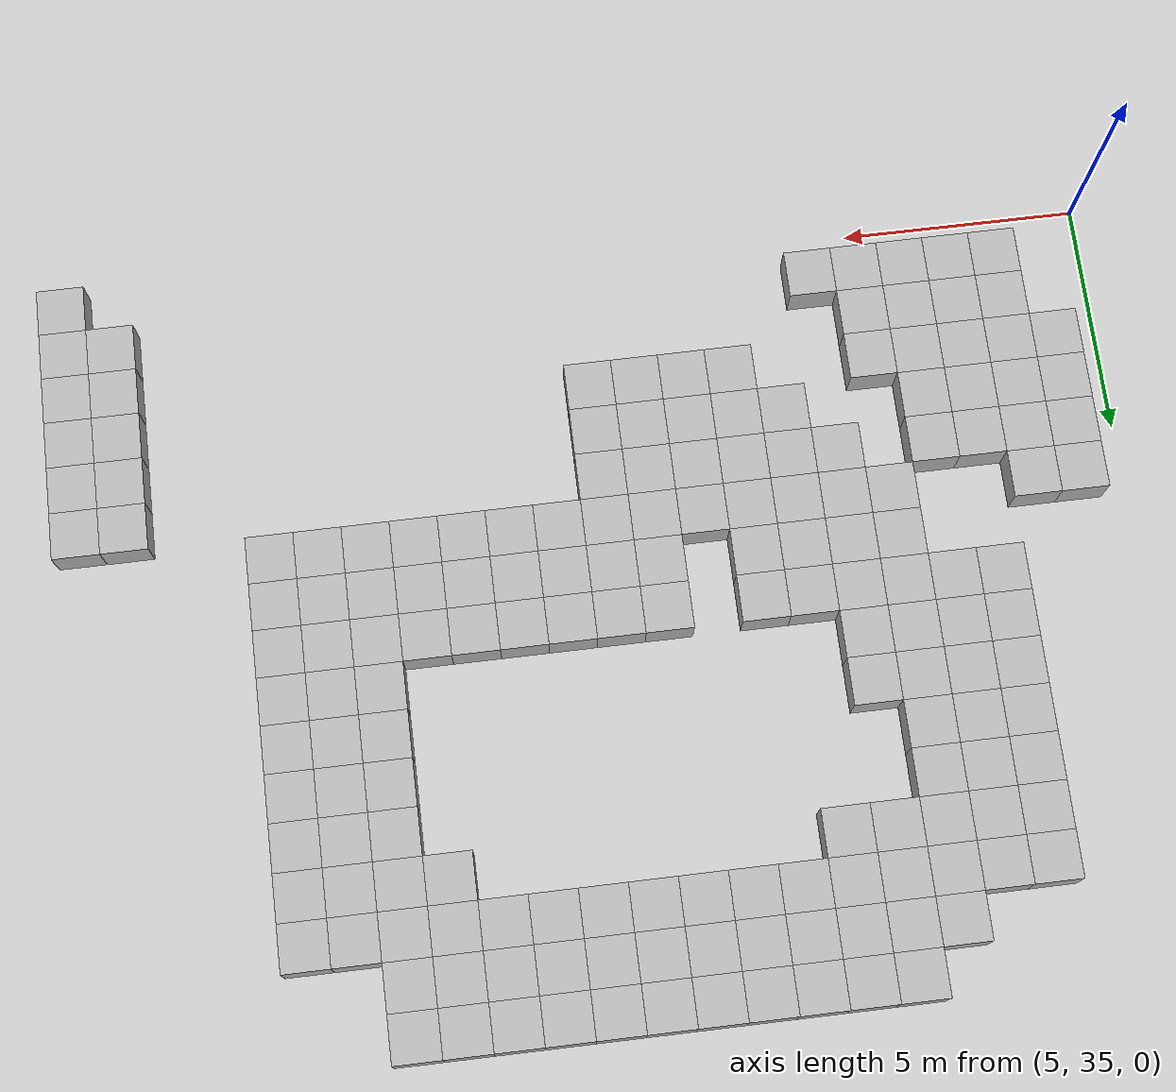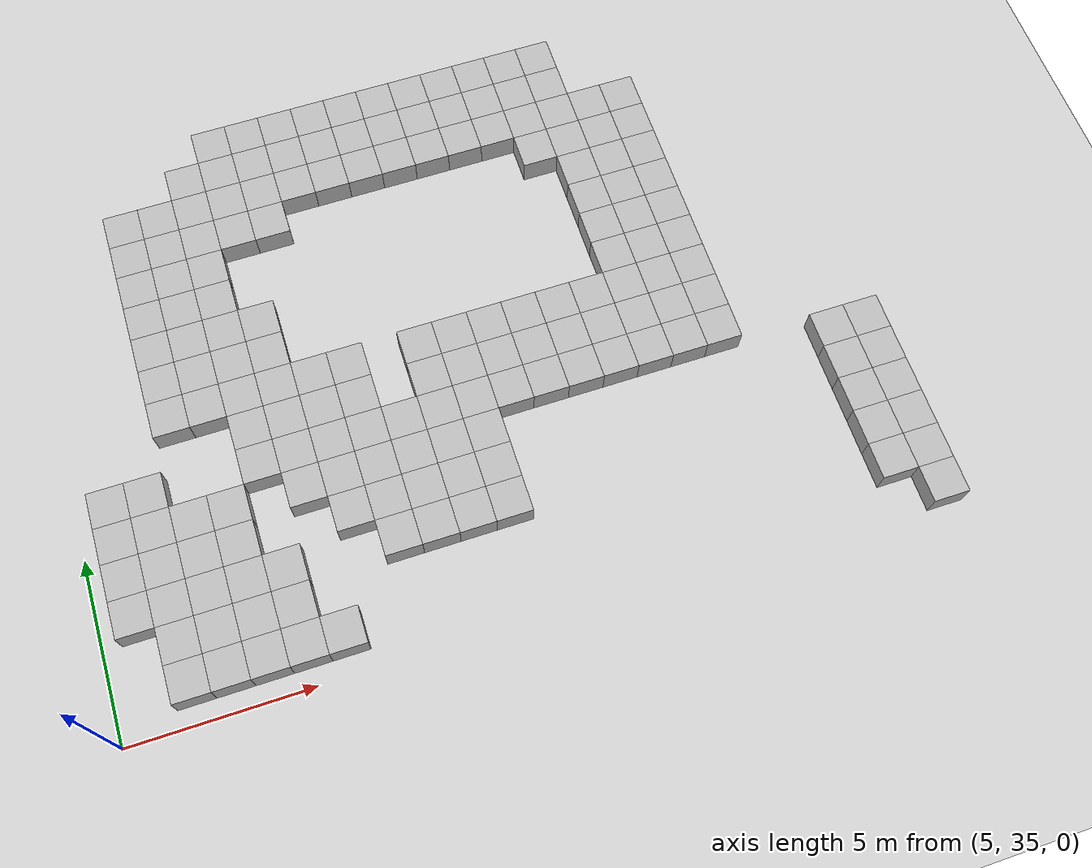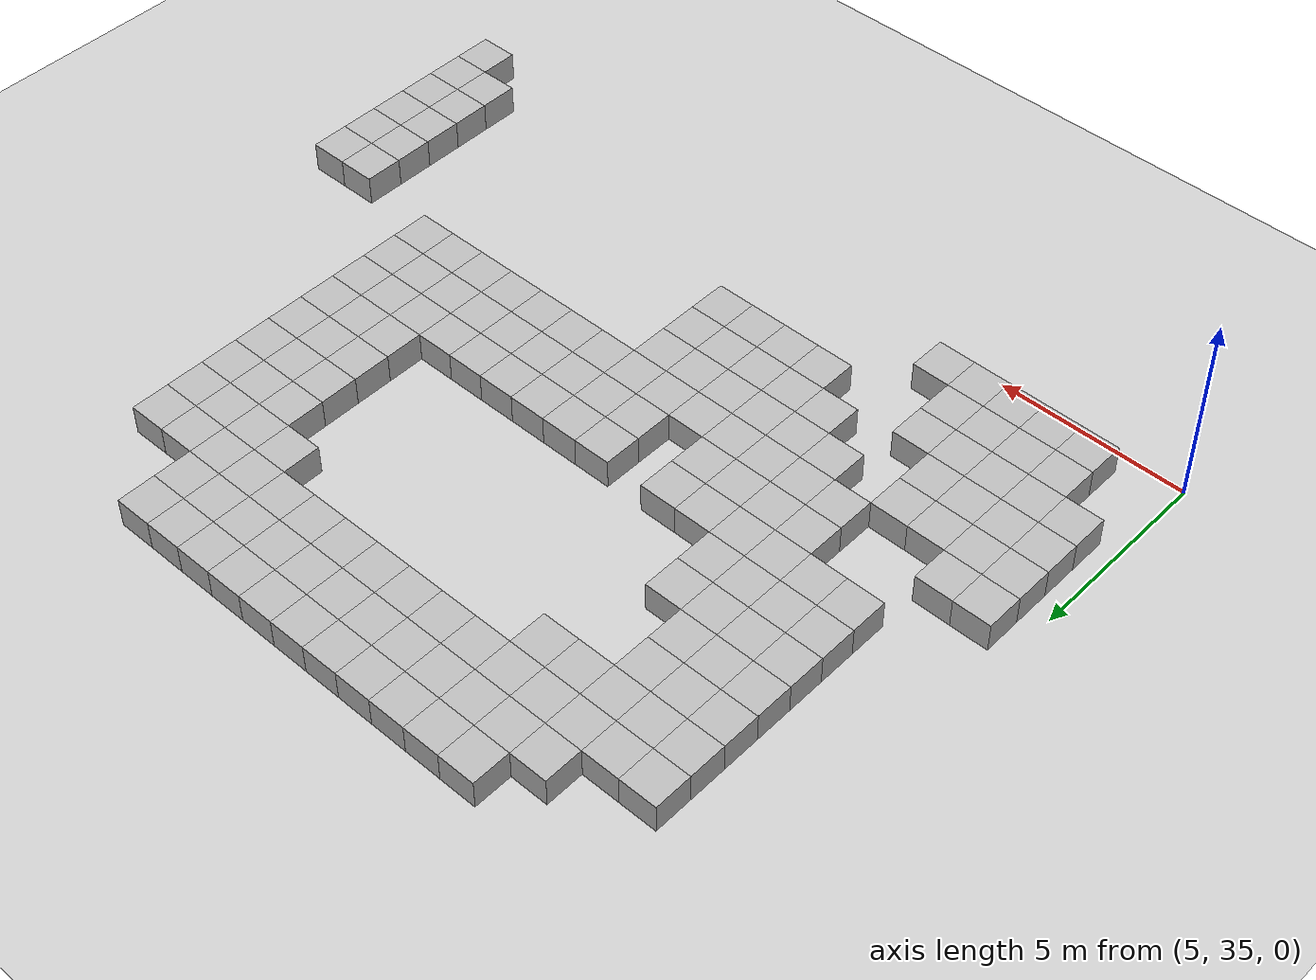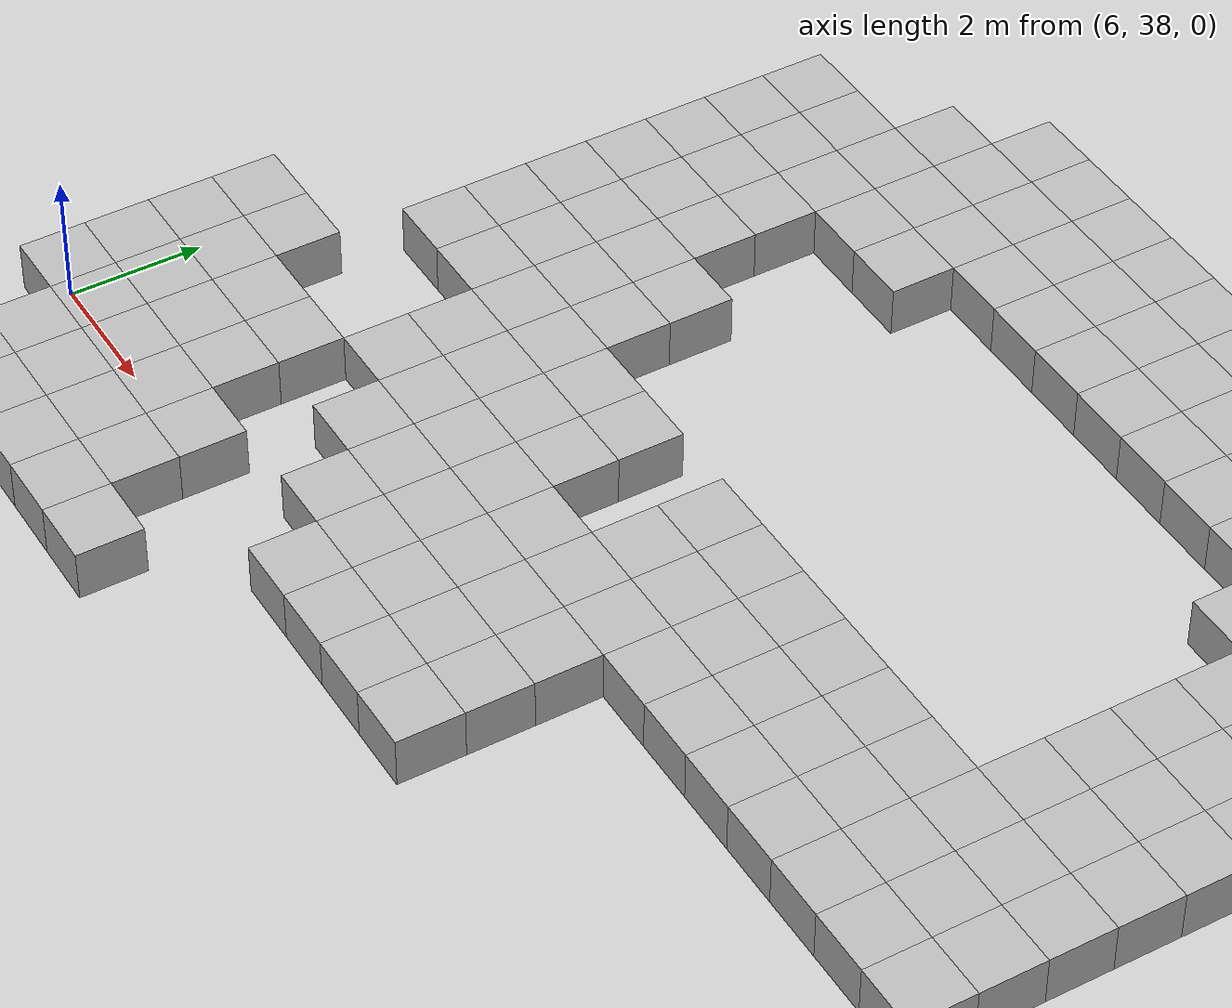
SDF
<sdf version="1.6">
 <world name="default">
  <model name="ground_plane">
   <static>1</static>
   <link name="link">
    <collision name="collision">
     <geometry><plane><normal>0 0 1</normal><size>100 100</size></plane></geometry>
     <surface>
      <contact><collide_bitmask>65535</collide_bitmask></contact>
      <friction><ode><mu>100</mu><mu2>50</mu2></ode></friction>
     </surface>
    </collision>
    <visual name="visual">
     <cast_shadows>0</cast_shadows>
     <geometry><plane><normal>0 0 1</normal><size>100 100</size></plane></geometry>
     <material>
      <script><uri>file://media/materials/scripts/gazebo.material</uri><name>Gazebo/Grey</name></script>
     </material>
    </visual>
   </link>
  </model>
  <model name="box_638">
   <static>1</static>
   <pose>6 38 0 0 -0 0</pose>
   <link name="link"><visual name="visual"><geometry><box><size>1 1 1.5</size></box></geometry></visual></link>
  </model>
  <model name="box_639">
   <static>1</static>
   <pose>6 39 0 0 -0 0</pose>
   <link name="link"><visual name="visual"><geometry><box><size>1 1 1.5</size></box></geometry></visual></link>
  </model>
  <model name="box_640">
   <static>1</static>
   <pose>6 40 0 0 -0 0</pose>
   <link name="link"><visual name="visual"><geometry><box><size>1 1 1.5</size></box></geometry></visual></link>
  </model>
  <model name="box_641">
   <static>1</static>
   <pose>6 41 0 0 -0 0</pose>
   <link name="link"><visual name="visual"><geometry><box><size>1 1 1.5</size></box></geometry></visual></link>
  </model>
  <model name="box_736">
   <static>1</static>
   <pose>7 36 0 0 -0 0</pose>
   <link name="link"><visual name="visual"><geometry><box><size>1 1 1.5</size></box></geometry></visual></link>
  </model>
  <model name="box_737">
   <static>1</static>
   <pose>7 37 0 0 -0 0</pose>
   <link name="link"><visual name="visual"><geometry><box><size>1 1 1.5</size></box></geometry></visual></link>
  </model>
  <model name="box_738">
   <static>1</static>
   <pose>7 38 0 0 -0 0</pose>
   <link name="link"><visual name="visual"><geometry><box><size>1 1 1.5</size></box></geometry></visual></link>
  </model>
  <model name="box_739">
   <static>1</static>
   <pose>7 39 0 0 -0 0</pose>
   <link name="link"><visual name="visual"><geometry><box><size>1 1 1.5</size></box></geometry></visual></link>
  </model>
  <model name="box_740">
   <static>1</static>
   <pose>7 40 0 0 -0 0</pose>
   <link name="link"><visual name="visual"><geometry><box><size>1 1 1.5</size></box></geometry></visual></link>
  </model>
  <model name="box_741">
   <static>1</static>
   <pose>7 41 0 0 -0 0</pose>
   <link name="link"><visual name="visual"><geometry><box><size>1 1 1.5</size></box></geometry></visual></link>
  </model>
  <model name="box_836">
   <static>1</static>
   <pose>8 36 0 0 -0 0</pose>
   <link name="link"><visual name="visual"><geometry><box><size>1 1 1.5</size></box></geometry></visual></link>
  </model>
  <model name="box_837">
   <static>1</static>
   <pose>8 37 0 0 -0 0</pose>
   <link name="link"><visual name="visual"><geometry><box><size>1 1 1.5</size></box></geometry></visual></link>
  </model>
  <model name="box_838">
   <static>1</static>
   <pose>8 38 0 0 -0 0</pose>
   <link name="link"><visual name="visual"><geometry><box><size>1 1 1.5</size></box></geometry></visual></link>
  </model>
  <model name="box_839">
   <static>1</static>
   <pose>8 39 0 0 -0 0</pose>
   <link name="link"><visual name="visual"><geometry><box><size>1 1 1.5</size></box></geometry></visual></link>
  </model>
  <model name="box_840">
   <static>1</static>
   <pose>8 40 0 0 -0 0</pose>
   <link name="link"><visual name="visual"><geometry><box><size>1 1 1.5</size></box></geometry></visual></link>
  </model>
  <model name="box_843">
   <static>1</static>
   <pose>8 43 0 0 -0 0</pose>
   <link name="link"><visual name="visual"><geometry><box><size>1 1 1.5</size></box></geometry></visual></link>
  </model>
  <model name="box_844">
   <static>1</static>
   <pose>8 44 0 0 -0 0</pose>
   <link name="link"><visual name="visual"><geometry><box><size>1 1 1.5</size></box></geometry></visual></link>
  </model>
  <model name="box_845">
   <static>1</static>
   <pose>8 45 0 0 -0 0</pose>
   <link name="link"><visual name="visual"><geometry><box><size>1 1 1.5</size></box></geometry></visual></link>
  </model>
  <model name="box_846">
   <static>1</static>
   <pose>8 46 0 0 -0 0</pose>
   <link name="link"><visual name="visual"><geometry><box><size>1 1 1.5</size></box></geometry></visual></link>
  </model>
  <model name="box_847">
   <static>1</static>
   <pose>8 47 0 0 -0 0</pose>
   <link name="link"><visual name="visual"><geometry><box><size>1 1 1.5</size></box></geometry></visual></link>
  </model>
  <model name="box_848">
   <static>1</static>
   <pose>8 48 0 0 -0 0</pose>
   <link name="link"><visual name="visual"><geometry><box><size>1 1 1.5</size></box></geometry></visual></link>
  </model>
  <model name="box_849">
   <static>1</static>
   <pose>8 49 0 0 -0 0</pose>
   <link name="link"><visual name="visual"><geometry><box><size>1 1 1.5</size></box></geometry></visual></link>
  </model>
  <model name="box_936">
   <static>1</static>
   <pose>9 36 0 0 -0 0</pose>
   <link name="link"><visual name="visual"><geometry><box><size>1 1 1.5</size></box></geometry></visual></link>
  </model>
  <model name="box_937">
   <static>1</static>
   <pose>9 37 0 0 -0 0</pose>
   <link name="link"><visual name="visual"><geometry><box><size>1 1 1.5</size></box></geometry></visual></link>
  </model>
  <model name="box_938">
   <static>1</static>
   <pose>9 38 0 0 -0 0</pose>
   <link name="link"><visual name="visual"><geometry><box><size>1 1 1.5</size></box></geometry></visual></link>
  </model>
  <model name="box_939">
   <static>1</static>
   <pose>9 39 0 0 -0 0</pose>
   <link name="link"><visual name="visual"><geometry><box><size>1 1 1.5</size></box></geometry></visual></link>
  </model>
  <model name="box_940">
   <static>1</static>
   <pose>9 40 0 0 -0 0</pose>
   <link name="link"><visual name="visual"><geometry><box><size>1 1 1.5</size></box></geometry></visual></link>
  </model>
  <model name="box_943">
   <static>1</static>
   <pose>9 43 0 0 -0 0</pose>
   <link name="link"><visual name="visual"><geometry><box><size>1 1 1.5</size></box></geometry></visual></link>
  </model>
  <model name="box_944">
   <static>1</static>
   <pose>9 44 0 0 -0 0</pose>
   <link name="link"><visual name="visual"><geometry><box><size>1 1 1.5</size></box></geometry></visual></link>
  </model>
  <model name="box_945">
   <static>1</static>
   <pose>9 45 0 0 -0 0</pose>
   <link name="link"><visual name="visual"><geometry><box><size>1 1 1.5</size></box></geometry></visual></link>
  </model>
  <model name="box_946">
   <static>1</static>
   <pose>9 46 0 0 -0 0</pose>
   <link name="link"><visual name="visual"><geometry><box><size>1 1 1.5</size></box></geometry></visual></link>
  </model>
  <model name="box_947">
   <static>1</static>
   <pose>9 47 0 0 -0 0</pose>
   <link name="link"><visual name="visual"><geometry><box><size>1 1 1.5</size></box></geometry></visual></link>
  </model>
  <model name="box_948">
   <static>1</static>
   <pose>9 48 0 0 -0 0</pose>
   <link name="link"><visual name="visual"><geometry><box><size>1 1 1.5</size></box></geometry></visual></link>
  </model>
  <model name="box_949">
   <static>1</static>
   <pose>9 49 0 0 -0 0</pose>
   <link name="link"><visual name="visual"><geometry><box><size>1 1 1.5</size></box></geometry></visual></link>
  </model>
  <model name="box_1036">
   <static>1</static>
   <pose>10 36 0 0 -0 0</pose>
   <link name="link"><visual name="visual"><geometry><box><size>1 1 1.5</size></box></geometry></visual></link>
  </model>
  <model name="box_1037">
   <static>1</static>
   <pose>10 37 0 0 -0 0</pose>
   <link name="link"><visual name="visual"><geometry><box><size>1 1 1.5</size></box></geometry></visual></link>
  </model>
  <model name="box_1038">
   <static>1</static>
   <pose>10 38 0 0 -0 0</pose>
   <link name="link"><visual name="visual"><geometry><box><size>1 1 1.5</size></box></geometry></visual></link>
  </model>
  <model name="box_1041">
   <static>1</static>
   <pose>10 41 0 0 -0 0</pose>
   <link name="link"><visual name="visual"><geometry><box><size>1 1 1.5</size></box></geometry></visual></link>
  </model>
  <model name="box_1042">
   <static>1</static>
   <pose>10 42 0 0 -0 0</pose>
   <link name="link"><visual name="visual"><geometry><box><size>1 1 1.5</size></box></geometry></visual></link>
  </model>
  <model name="box_1043">
   <static>1</static>
   <pose>10 43 0 0 -0 0</pose>
   <link name="link"><visual name="visual"><geometry><box><size>1 1 1.5</size></box></geometry></visual></link>
  </model>
  <model name="box_1044">
   <static>1</static>
   <pose>10 44 0 0 -0 0</pose>
   <link name="link"><visual name="visual"><geometry><box><size>1 1 1.5</size></box></geometry></visual></link>
  </model>
  <model name="box_1045">
   <static>1</static>
   <pose>10 45 0 0 -0 0</pose>
   <link name="link"><visual name="visual"><geometry><box><size>1 1 1.5</size></box></geometry></visual></link>
  </model>
  <model name="box_1046">
   <static>1</static>
   <pose>10 46 0 0 -0 0</pose>
   <link name="link"><visual name="visual"><geometry><box><size>1 1 1.5</size></box></geometry></visual></link>
  </model>
  <model name="box_1047">
   <static>1</static>
   <pose>10 47 0 0 -0 0</pose>
   <link name="link"><visual name="visual"><geometry><box><size>1 1 1.5</size></box></geometry></visual></link>
  </model>
  <model name="box_1048">
   <static>1</static>
   <pose>10 48 0 0 -0 0</pose>
   <link name="link"><visual name="visual"><geometry><box><size>1 1 1.5</size></box></geometry></visual></link>
  </model>
  <model name="box_1049">
   <static>1</static>
   <pose>10 49 0 0 -0 0</pose>
   <link name="link"><visual name="visual"><geometry><box><size>1 1 1.5</size></box></geometry></visual></link>
  </model>
  <model name="box_1050">
   <static>1</static>
   <pose>10 50 0 0 -0 0</pose>
   <link name="link"><visual name="visual"><geometry><box><size>1 1 1.5</size></box></geometry></visual></link>
  </model>
  <model name="box_1136">
   <static>1</static>
   <pose>11 36 0 0 -0 0</pose>
   <link name="link"><visual name="visual"><geometry><box><size>1 1 1.5</size></box></geometry></visual></link>
  </model>
  <model name="box_1140">
   <static>1</static>
   <pose>11 40 0 0 -0 0</pose>
   <link name="link"><visual name="visual"><geometry><box><size>1 1 1.5</size></box></geometry></visual></link>
  </model>
  <model name="box_1141">
   <static>1</static>
   <pose>11 41 0 0 -0 0</pose>
   <link name="link"><visual name="visual"><geometry><box><size>1 1 1.5</size></box></geometry></visual></link>
  </model>
  <model name="box_1142">
   <static>1</static>
   <pose>11 42 0 0 -0 0</pose>
   <link name="link"><visual name="visual"><geometry><box><size>1 1 1.5</size></box></geometry></visual></link>
  </model>
  <model name="box_1143">
   <static>1</static>
   <pose>11 43 0 0 -0 0</pose>
   <link name="link"><visual name="visual"><geometry><box><size>1 1 1.5</size></box></geometry></visual></link>
  </model>
  <model name="box_1144">
   <static>1</static>
   <pose>11 44 0 0 -0 0</pose>
   <link name="link"><visual name="visual"><geometry><box><size>1 1 1.5</size></box></geometry></visual></link>
  </model>
  <model name="box_1145">
   <static>1</static>
   <pose>11 45 0 0 -0 0</pose>
   <link name="link"><visual name="visual"><geometry><box><size>1 1 1.5</size></box></geometry></visual></link>
  </model>
  <model name="box_1148">
   <static>1</static>
   <pose>11 48 0 0 -0 0</pose>
   <link name="link"><visual name="visual"><geometry><box><size>1 1 1.5</size></box></geometry></visual></link>
  </model>
  <model name="box_1149">
   <static>1</static>
   <pose>11 49 0 0 -0 0</pose>
   <link name="link"><visual name="visual"><geometry><box><size>1 1 1.5</size></box></geometry></visual></link>
  </model>
  <model name="box_1150">
   <static>1</static>
   <pose>11 50 0 0 -0 0</pose>
   <link name="link"><visual name="visual"><geometry><box><size>1 1 1.5</size></box></geometry></visual></link>
  </model>
  <model name="box_1151">
   <static>1</static>
   <pose>11 51 0 0 -0 0</pose>
   <link name="link"><visual name="visual"><geometry><box><size>1 1 1.5</size></box></geometry></visual></link>
  </model>
  <model name="box_1239">
   <static>1</static>
   <pose>12 39 0 0 -0 0</pose>
   <link name="link"><visual name="visual"><geometry><box><size>1 1 1.5</size></box></geometry></visual></link>
  </model>
  <model name="box_1240">
   <static>1</static>
   <pose>12 40 0 0 -0 0</pose>
   <link name="link"><visual name="visual"><geometry><box><size>1 1 1.5</size></box></geometry></visual></link>
  </model>
  <model name="box_1241">
   <static>1</static>
   <pose>12 41 0 0 -0 0</pose>
   <link name="link"><visual name="visual"><geometry><box><size>1 1 1.5</size></box></geometry></visual></link>
  </model>
  <model name="box_1242">
   <static>1</static>
   <pose>12 42 0 0 -0 0</pose>
   <link name="link"><visual name="visual"><geometry><box><size>1 1 1.5</size></box></geometry></visual></link>
  </model>
  <model name="box_1243">
   <static>1</static>
   <pose>12 43 0 0 -0 0</pose>
   <link name="link"><visual name="visual"><geometry><box><size>1 1 1.5</size></box></geometry></visual></link>
  </model>
  <model name="box_1248">
   <static>1</static>
   <pose>12 48 0 0 -0 0</pose>
   <link name="link"><visual name="visual"><geometry><box><size>1 1 1.5</size></box></geometry></visual></link>
  </model>
  <model name="box_1249">
   <static>1</static>
   <pose>12 49 0 0 -0 0</pose>
   <link name="link"><visual name="visual"><geometry><box><size>1 1 1.5</size></box></geometry></visual></link>
  </model>
  <model name="box_1250">
   <static>1</static>
   <pose>12 50 0 0 -0 0</pose>
   <link name="link"><visual name="visual"><geometry><box><size>1 1 1.5</size></box></geometry></visual></link>
  </model>
  <model name="box_1251">
   <static>1</static>
   <pose>12 51 0 0 -0 0</pose>
   <link name="link"><visual name="visual"><geometry><box><size>1 1 1.5</size></box></geometry></visual></link>
  </model>
  <model name="box_1338">
   <static>1</static>
   <pose>13 38 0 0 -0 0</pose>
   <link name="link"><visual name="visual"><geometry><box><size>1 1 1.5</size></box></geometry></visual></link>
  </model>
  <model name="box_1339">
   <static>1</static>
   <pose>13 39 0 0 -0 0</pose>
   <link name="link"><visual name="visual"><geometry><box><size>1 1 1.5</size></box></geometry></visual></link>
  </model>
  <model name="box_1340">
   <static>1</static>
   <pose>13 40 0 0 -0 0</pose>
   <link name="link"><visual name="visual"><geometry><box><size>1 1 1.5</size></box></geometry></visual></link>
  </model>
  <model name="box_1341">
   <static>1</static>
   <pose>13 41 0 0 -0 0</pose>
   <link name="link"><visual name="visual"><geometry><box><size>1 1 1.5</size></box></geometry></visual></link>
  </model>
  <model name="box_1342">
   <static>1</static>
   <pose>13 42 0 0 -0 0</pose>
   <link name="link"><visual name="visual"><geometry><box><size>1 1 1.5</size></box></geometry></visual></link>
  </model>
  <model name="box_1343">
   <static>1</static>
   <pose>13 43 0 0 -0 0</pose>
   <link name="link"><visual name="visual"><geometry><box><size>1 1 1.5</size></box></geometry></visual></link>
  </model>
  <model name="box_1349">
   <static>1</static>
   <pose>13 49 0 0 -0 0</pose>
   <link name="link"><visual name="visual"><geometry><box><size>1 1 1.5</size></box></geometry></visual></link>
  </model>
  <model name="box_1350">
   <static>1</static>
   <pose>13 50 0 0 -0 0</pose>
   <link name="link"><visual name="visual"><geometry><box><size>1 1 1.5</size></box></geometry></visual></link>
  </model>
  <model name="box_1351">
   <static>1</static>
   <pose>13 51 0 0 -0 0</pose>
   <link name="link"><visual name="visual"><geometry><box><size>1 1 1.5</size></box></geometry></visual></link>
  </model>
  <model name="box_1438">
   <static>1</static>
   <pose>14 38 0 0 -0 0</pose>
   <link name="link"><visual name="visual"><geometry><box><size>1 1 1.5</size></box></geometry></visual></link>
  </model>
  <model name="box_1439">
   <static>1</static>
   <pose>14 39 0 0 -0 0</pose>
   <link name="link"><visual name="visual"><geometry><box><size>1 1 1.5</size></box></geometry></visual></link>
  </model>
  <model name="box_1440">
   <static>1</static>
   <pose>14 40 0 0 -0 0</pose>
   <link name="link"><visual name="visual"><geometry><box><size>1 1 1.5</size></box></geometry></visual></link>
  </model>
  <model name="box_1441">
   <static>1</static>
   <pose>14 41 0 0 -0 0</pose>
   <link name="link"><visual name="visual"><geometry><box><size>1 1 1.5</size></box></geometry></visual></link>
  </model>
  <model name="box_1449">
   <static>1</static>
   <pose>14 49 0 0 -0 0</pose>
   <link name="link"><visual name="visual"><geometry><box><size>1 1 1.5</size></box></geometry></visual></link>
  </model>
  <model name="box_1450">
   <static>1</static>
   <pose>14 50 0 0 -0 0</pose>
   <link name="link"><visual name="visual"><geometry><box><size>1 1 1.5</size></box></geometry></visual></link>
  </model>
  <model name="box_1451">
   <static>1</static>
   <pose>14 51 0 0 -0 0</pose>
   <link name="link"><visual name="visual"><geometry><box><size>1 1 1.5</size></box></geometry></visual></link>
  </model>
  <model name="box_1538">
   <static>1</static>
   <pose>15 38 0 0 -0 0</pose>
   <link name="link"><visual name="visual"><geometry><box><size>1 1 1.5</size></box></geometry></visual></link>
  </model>
  <model name="box_1539">
   <static>1</static>
   <pose>15 39 0 0 -0 0</pose>
   <link name="link"><visual name="visual"><geometry><box><size>1 1 1.5</size></box></geometry></visual></link>
  </model>
  <model name="box_1540">
   <static>1</static>
   <pose>15 40 0 0 -0 0</pose>
   <link name="link"><visual name="visual"><geometry><box><size>1 1 1.5</size></box></geometry></visual></link>
  </model>
  <model name="box_1541">
   <static>1</static>
   <pose>15 41 0 0 -0 0</pose>
   <link name="link"><visual name="visual"><geometry><box><size>1 1 1.5</size></box></geometry></visual></link>
  </model>
  <model name="box_1542">
   <static>1</static>
   <pose>15 42 0 0 -0 0</pose>
   <link name="link"><visual name="visual"><geometry><box><size>1 1 1.5</size></box></geometry></visual></link>
  </model>
  <model name="box_1543">
   <static>1</static>
   <pose>15 43 0 0 -0 0</pose>
   <link name="link"><visual name="visual"><geometry><box><size>1 1 1.5</size></box></geometry></visual></link>
  </model>
  <model name="box_1549">
   <static>1</static>
   <pose>15 49 0 0 -0 0</pose>
   <link name="link"><visual name="visual"><geometry><box><size>1 1 1.5</size></box></geometry></visual></link>
  </model>
  <model name="box_1550">
   <static>1</static>
   <pose>15 50 0 0 -0 0</pose>
   <link name="link"><visual name="visual"><geometry><box><size>1 1 1.5</size></box></geometry></visual></link>
  </model>
  <model name="box_1551">
   <static>1</static>
   <pose>15 51 0 0 -0 0</pose>
   <link name="link"><visual name="visual"><geometry><box><size>1 1 1.5</size></box></geometry></visual></link>
  </model>
  <model name="box_1638">
   <static>1</static>
   <pose>16 38 0 0 -0 0</pose>
   <link name="link"><visual name="visual"><geometry><box><size>1 1 1.5</size></box></geometry></visual></link>
  </model>
  <model name="box_1639">
   <static>1</static>
   <pose>16 39 0 0 -0 0</pose>
   <link name="link"><visual name="visual"><geometry><box><size>1 1 1.5</size></box></geometry></visual></link>
  </model>
  <model name="box_1640">
   <static>1</static>
   <pose>16 40 0 0 -0 0</pose>
   <link name="link"><visual name="visual"><geometry><box><size>1 1 1.5</size></box></geometry></visual></link>
  </model>
  <model name="box_1641">
   <static>1</static>
   <pose>16 41 0 0 -0 0</pose>
   <link name="link"><visual name="visual"><geometry><box><size>1 1 1.5</size></box></geometry></visual></link>
  </model>
  <model name="box_1642">
   <static>1</static>
   <pose>16 42 0 0 -0 0</pose>
   <link name="link"><visual name="visual"><geometry><box><size>1 1 1.5</size></box></geometry></visual></link>
  </model>
  <model name="box_1643">
   <static>1</static>
   <pose>16 43 0 0 -0 0</pose>
   <link name="link"><visual name="visual"><geometry><box><size>1 1 1.5</size></box></geometry></visual></link>
  </model>
  <model name="box_1649">
   <static>1</static>
   <pose>16 49 0 0 -0 0</pose>
   <link name="link"><visual name="visual"><geometry><box><size>1 1 1.5</size></box></geometry></visual></link>
  </model>
  <model name="box_1650">
   <static>1</static>
   <pose>16 50 0 0 -0 0</pose>
   <link name="link"><visual name="visual"><geometry><box><size>1 1 1.5</size></box></geometry></visual></link>
  </model>
  <model name="box_1651">
   <static>1</static>
   <pose>16 51 0 0 -0 0</pose>
   <link name="link"><visual name="visual"><geometry><box><size>1 1 1.5</size></box></geometry></visual></link>
  </model>
  <model name="box_1741">
   <static>1</static>
   <pose>17 41 0 0 -0 0</pose>
   <link name="link"><visual name="visual"><geometry><box><size>1 1 1.5</size></box></geometry></visual></link>
  </model>
  <model name="box_1742">
   <static>1</static>
   <pose>17 42 0 0 -0 0</pose>
   <link name="link"><visual name="visual"><geometry><box><size>1 1 1.5</size></box></geometry></visual></link>
  </model>
  <model name="box_1743">
   <static>1</static>
   <pose>17 43 0 0 -0 0</pose>
   <link name="link"><visual name="visual"><geometry><box><size>1 1 1.5</size></box></geometry></visual></link>
  </model>
  <model name="box_1749">
   <static>1</static>
   <pose>17 49 0 0 -0 0</pose>
   <link name="link"><visual name="visual"><geometry><box><size>1 1 1.5</size></box></geometry></visual></link>
  </model>
  <model name="box_1750">
   <static>1</static>
   <pose>17 50 0 0 -0 0</pose>
   <link name="link"><visual name="visual"><geometry><box><size>1 1 1.5</size></box></geometry></visual></link>
  </model>
  <model name="box_1751">
   <static>1</static>
   <pose>17 51 0 0 -0 0</pose>
   <link name="link"><visual name="visual"><geometry><box><size>1 1 1.5</size></box></geometry></visual></link>
  </model>
  <model name="box_1841">
   <static>1</static>
   <pose>18 41 0 0 -0 0</pose>
   <link name="link"><visual name="visual"><geometry><box><size>1 1 1.5</size></box></geometry></visual></link>
  </model>
  <model name="box_1842">
   <static>1</static>
   <pose>18 42 0 0 -0 0</pose>
   <link name="link"><visual name="visual"><geometry><box><size>1 1 1.5</size></box></geometry></visual></link>
  </model>
  <model name="box_1843">
   <static>1</static>
   <pose>18 43 0 0 -0 0</pose>
   <link name="link"><visual name="visual"><geometry><box><size>1 1 1.5</size></box></geometry></visual></link>
  </model>
  <model name="box_1849">
   <static>1</static>
   <pose>18 49 0 0 -0 0</pose>
   <link name="link"><visual name="visual"><geometry><box><size>1 1 1.5</size></box></geometry></visual></link>
  </model>
  <model name="box_1850">
   <static>1</static>
   <pose>18 50 0 0 -0 0</pose>
   <link name="link"><visual name="visual"><geometry><box><size>1 1 1.5</size></box></geometry></visual></link>
  </model>
  <model name="box_1851">
   <static>1</static>
   <pose>18 51 0 0 -0 0</pose>
   <link name="link"><visual name="visual"><geometry><box><size>1 1 1.5</size></box></geometry></visual></link>
  </model>
  <model name="box_1941">
   <static>1</static>
   <pose>19 41 0 0 -0 0</pose>
   <link name="link"><visual name="visual"><geometry><box><size>1 1 1.5</size></box></geometry></visual></link>
  </model>
  <model name="box_1942">
   <static>1</static>
   <pose>19 42 0 0 -0 0</pose>
   <link name="link"><visual name="visual"><geometry><box><size>1 1 1.5</size></box></geometry></visual></link>
  </model>
  <model name="box_1943">
   <static>1</static>
   <pose>19 43 0 0 -0 0</pose>
   <link name="link"><visual name="visual"><geometry><box><size>1 1 1.5</size></box></geometry></visual></link>
  </model>
  <model name="box_1949">
   <static>1</static>
   <pose>19 49 0 0 -0 0</pose>
   <link name="link"><visual name="visual"><geometry><box><size>1 1 1.5</size></box></geometry></visual></link>
  </model>
  <model name="box_1950">
   <static>1</static>
   <pose>19 50 0 0 -0 0</pose>
   <link name="link"><visual name="visual"><geometry><box><size>1 1 1.5</size></box></geometry></visual></link>
  </model>
  <model name="box_1951">
   <static>1</static>
   <pose>19 51 0 0 -0 0</pose>
   <link name="link"><visual name="visual"><geometry><box><size>1 1 1.5</size></box></geometry></visual></link>
  </model>
  <model name="box_2041">
   <static>1</static>
   <pose>20 41 0 0 -0 0</pose>
   <link name="link"><visual name="visual"><geometry><box><size>1 1 1.5</size></box></geometry></visual></link>
  </model>
  <model name="box_2042">
   <static>1</static>
   <pose>20 42 0 0 -0 0</pose>
   <link name="link"><visual name="visual"><geometry><box><size>1 1 1.5</size></box></geometry></visual></link>
  </model>
  <model name="box_2043">
   <static>1</static>
   <pose>20 43 0 0 -0 0</pose>
   <link name="link"><visual name="visual"><geometry><box><size>1 1 1.5</size></box></geometry></visual></link>
  </model>
  <model name="box_2048">
   <static>1</static>
   <pose>20 48 0 0 -0 0</pose>
   <link name="link"><visual name="visual"><geometry><box><size>1 1 1.5</size></box></geometry></visual></link>
  </model>
  <model name="box_2049">
   <static>1</static>
   <pose>20 49 0 0 -0 0</pose>
   <link name="link"><visual name="visual"><geometry><box><size>1 1 1.5</size></box></geometry></visual></link>
  </model>
  <model name="box_2050">
   <static>1</static>
   <pose>20 50 0 0 -0 0</pose>
   <link name="link"><visual name="visual"><geometry><box><size>1 1 1.5</size></box></geometry></visual></link>
  </model>
  <model name="box_2051">
   <static>1</static>
   <pose>20 51 0 0 -0 0</pose>
   <link name="link"><visual name="visual"><geometry><box><size>1 1 1.5</size></box></geometry></visual></link>
  </model>
  <model name="box_2141">
   <static>1</static>
   <pose>21 41 0 0 -0 0</pose>
   <link name="link"><visual name="visual"><geometry><box><size>1 1 1.5</size></box></geometry></visual></link>
  </model>
  <model name="box_2142">
   <static>1</static>
   <pose>21 42 0 0 -0 0</pose>
   <link name="link"><visual name="visual"><geometry><box><size>1 1 1.5</size></box></geometry></visual></link>
  </model>
  <model name="box_2143">
   <static>1</static>
   <pose>21 43 0 0 -0 0</pose>
   <link name="link"><visual name="visual"><geometry><box><size>1 1 1.5</size></box></geometry></visual></link>
  </model>
  <model name="box_2144">
   <static>1</static>
   <pose>21 44 0 0 -0 0</pose>
   <link name="link"><visual name="visual"><geometry><box><size>1 1 1.5</size></box></geometry></visual></link>
  </model>
  <model name="box_2145">
   <static>1</static>
   <pose>21 45 0 0 -0 0</pose>
   <link name="link"><visual name="visual"><geometry><box><size>1 1 1.5</size></box></geometry></visual></link>
  </model>
  <model name="box_2146">
   <static>1</static>
   <pose>21 46 0 0 -0 0</pose>
   <link name="link"><visual name="visual"><geometry><box><size>1 1 1.5</size></box></geometry></visual></link>
  </model>
  <model name="box_2147">
   <static>1</static>
   <pose>21 47 0 0 -0 0</pose>
   <link name="link"><visual name="visual"><geometry><box><size>1 1 1.5</size></box></geometry></visual></link>
  </model>
  <model name="box_2148">
   <static>1</static>
   <pose>21 48 0 0 -0 0</pose>
   <link name="link"><visual name="visual"><geometry><box><size>1 1 1.5</size></box></geometry></visual></link>
  </model>
  <model name="box_2149">
   <static>1</static>
   <pose>21 49 0 0 -0 0</pose>
   <link name="link"><visual name="visual"><geometry><box><size>1 1 1.5</size></box></geometry></visual></link>
  </model>
  <model name="box_2150">
   <static>1</static>
   <pose>21 50 0 0 -0 0</pose>
   <link name="link"><visual name="visual"><geometry><box><size>1 1 1.5</size></box></geometry></visual></link>
  </model>
  <model name="box_2151">
   <static>1</static>
   <pose>21 51 0 0 -0 0</pose>
   <link name="link"><visual name="visual"><geometry><box><size>1 1 1.5</size></box></geometry></visual></link>
  </model>
  <model name="box_2241">
   <static>1</static>
   <pose>22 41 0 0 -0 0</pose>
   <link name="link"><visual name="visual"><geometry><box><size>1 1 1.5</size></box></geometry></visual></link>
  </model>
  <model name="box_2242">
   <static>1</static>
   <pose>22 42 0 0 -0 0</pose>
   <link name="link"><visual name="visual"><geometry><box><size>1 1 1.5</size></box></geometry></visual></link>
  </model>
  <model name="box_2243">
   <static>1</static>
   <pose>22 43 0 0 -0 0</pose>
   <link name="link"><visual name="visual"><geometry><box><size>1 1 1.5</size></box></geometry></visual></link>
  </model>
  <model name="box_2244">
   <static>1</static>
   <pose>22 44 0 0 -0 0</pose>
   <link name="link"><visual name="visual"><geometry><box><size>1 1 1.5</size></box></geometry></visual></link>
  </model>
  <model name="box_2245">
   <static>1</static>
   <pose>22 45 0 0 -0 0</pose>
   <link name="link"><visual name="visual"><geometry><box><size>1 1 1.5</size></box></geometry></visual></link>
  </model>
  <model name="box_2246">
   <static>1</static>
   <pose>22 46 0 0 -0 0</pose>
   <link name="link"><visual name="visual"><geometry><box><size>1 1 1.5</size></box></geometry></visual></link>
  </model>
  <model name="box_2247">
   <static>1</static>
   <pose>22 47 0 0 -0 0</pose>
   <link name="link"><visual name="visual"><geometry><box><size>1 1 1.5</size></box></geometry></visual></link>
  </model>
  <model name="box_2248">
   <static>1</static>
   <pose>22 48 0 0 -0 0</pose>
   <link name="link"><visual name="visual"><geometry><box><size>1 1 1.5</size></box></geometry></visual></link>
  </model>
  <model name="box_2249">
   <static>1</static>
   <pose>22 49 0 0 -0 0</pose>
   <link name="link"><visual name="visual"><geometry><box><size>1 1 1.5</size></box></geometry></visual></link>
  </model>
  <model name="box_2341">
   <static>1</static>
   <pose>23 41 0 0 -0 0</pose>
   <link name="link"><visual name="visual"><geometry><box><size>1 1 1.5</size></box></geometry></visual></link>
  </model>
  <model name="box_2342">
   <static>1</static>
   <pose>23 42 0 0 -0 0</pose>
   <link name="link"><visual name="visual"><geometry><box><size>1 1 1.5</size></box></geometry></visual></link>
  </model>
  <model name="box_2343">
   <static>1</static>
   <pose>23 43 0 0 -0 0</pose>
   <link name="link"><visual name="visual"><geometry><box><size>1 1 1.5</size></box></geometry></visual></link>
  </model>
  <model name="box_2344">
   <static>1</static>
   <pose>23 44 0 0 -0 0</pose>
   <link name="link"><visual name="visual"><geometry><box><size>1 1 1.5</size></box></geometry></visual></link>
  </model>
  <model name="box_2345">
   <static>1</static>
   <pose>23 45 0 0 -0 0</pose>
   <link name="link"><visual name="visual"><geometry><box><size>1 1 1.5</size></box></geometry></visual></link>
  </model>
  <model name="box_2346">
   <static>1</static>
   <pose>23 46 0 0 -0 0</pose>
   <link name="link"><visual name="visual"><geometry><box><size>1 1 1.5</size></box></geometry></visual></link>
  </model>
  <model name="box_2347">
   <static>1</static>
   <pose>23 47 0 0 -0 0</pose>
   <link name="link"><visual name="visual"><geometry><box><size>1 1 1.5</size></box></geometry></visual></link>
  </model>
  <model name="box_2348">
   <static>1</static>
   <pose>23 48 0 0 -0 0</pose>
   <link name="link"><visual name="visual"><geometry><box><size>1 1 1.5</size></box></geometry></visual></link>
  </model>
  <model name="box_2349">
   <static>1</static>
   <pose>23 49 0 0 -0 0</pose>
   <link name="link"><visual name="visual"><geometry><box><size>1 1 1.5</size></box></geometry></visual></link>
  </model>
  <model name="box_2636">
   <static>1</static>
   <pose>26 36 0 0 -0 0</pose>
   <link name="link"><visual name="visual"><geometry><box><size>1 1 1.5</size></box></geometry></visual></link>
  </model>
  <model name="box_2637">
   <static>1</static>
   <pose>26 37 0 0 -0 0</pose>
   <link name="link"><visual name="visual"><geometry><box><size>1 1 1.5</size></box></geometry></visual></link>
  </model>
  <model name="box_2638">
   <static>1</static>
   <pose>26 38 0 0 -0 0</pose>
   <link name="link"><visual name="visual"><geometry><box><size>1 1 1.5</size></box></geometry></visual></link>
  </model>
  <model name="box_2639">
   <static>1</static>
   <pose>26 39 0 0 -0 0</pose>
   <link name="link"><visual name="visual"><geometry><box><size>1 1 1.5</size></box></geometry></visual></link>
  </model>
  <model name="box_2640">
   <static>1</static>
   <pose>26 40 0 0 -0 0</pose>
   <link name="link"><visual name="visual"><geometry><box><size>1 1 1.5</size></box></geometry></visual></link>
  </model>
  <model name="box_2735">
   <static>1</static>
   <pose>27 35 0 0 -0 0</pose>
   <link name="link"><visual name="visual"><geometry><box><size>1 1 1.5</size></box></geometry></visual></link>
  </model>
  <model name="box_2736">
   <static>1</static>
   <pose>27 36 0 0 -0 0</pose>
   <link name="link"><visual name="visual"><geometry><box><size>1 1 1.5</size></box></geometry></visual></link>
  </model>
  <model name="box_2737">
   <static>1</static>
   <pose>27 37 0 0 -0 0</pose>
   <link name="link"><visual name="visual"><geometry><box><size>1 1 1.5</size></box></geometry></visual></link>
  </model>
  <model name="box_2738">
   <static>1</static>
   <pose>27 38 0 0 -0 0</pose>
   <link name="link"><visual name="visual"><geometry><box><size>1 1 1.5</size></box></geometry></visual></link>
  </model>
  <model name="box_2739">
   <static>1</static>
   <pose>27 39 0 0 -0 0</pose>
   <link name="link"><visual name="visual"><geometry><box><size>1 1 1.5</size></box></geometry></visual></link>
  </model>
  <model name="box_2740">
   <static>1</static>
   <pose>27 40 0 0 -0 0</pose>
   <link name="link"><visual name="visual"><geometry><box><size>1 1 1.5</size></box></geometry></visual></link>
  </model>
 </world>
</sdf>
